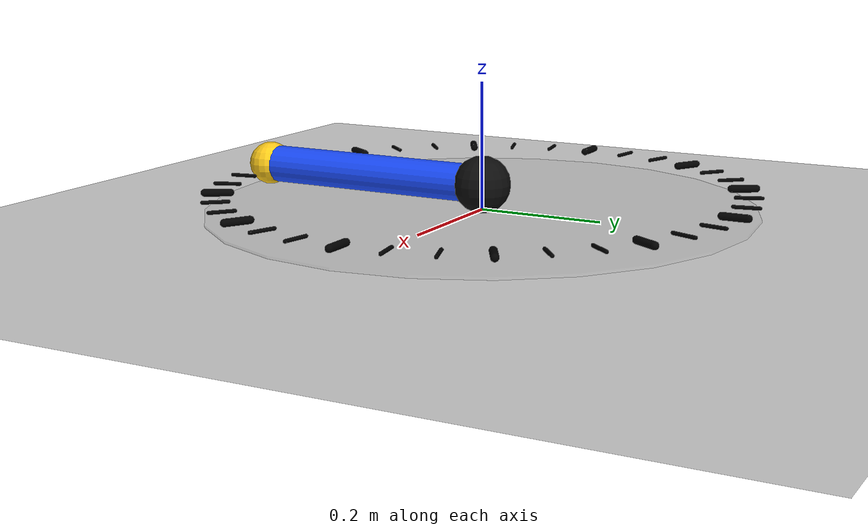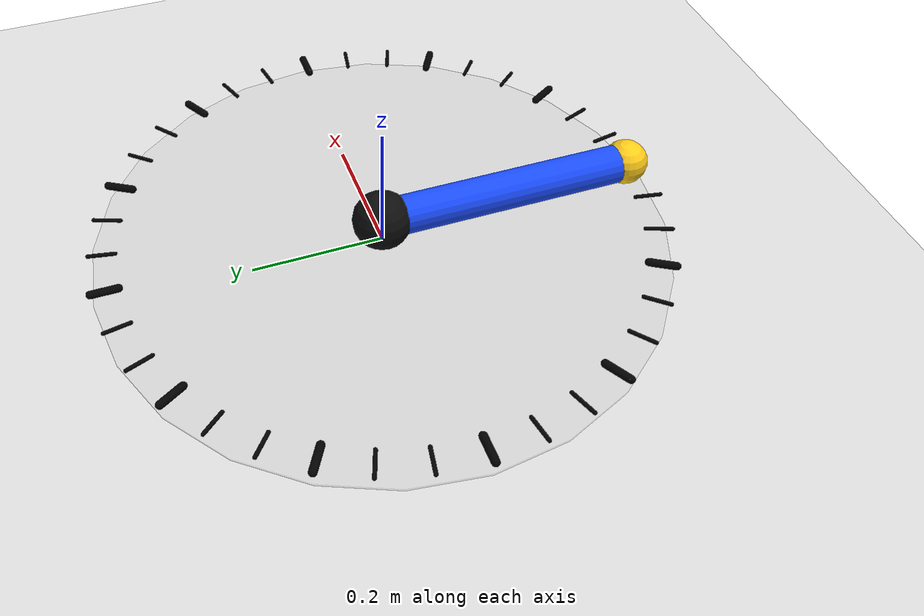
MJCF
<mujoco model="ro60_virtual_leg_1dof">
  <compiler angle="degree"/>

  <option gravity="0 0 0" timestep="0.002"/>

  <visual>
    <headlight diffuse="0.6 0.6 0.6" ambient="0.3 0.3 0.3"/>
  </visual>

  <worldbody>
    <light pos="0 0 2"/>

    <!-- floor -->
    <geom name="floor"
          type="plane"
          pos="0 0 -0.03"
          size="1.0 1.0 0.01"
          rgba="0.85 0.85 0.85 1"/>

    <!-- angle reference circle -->
    <geom name="angle_reference"
          type="cylinder"
          pos="0 0 0.002"
          size="0.43 0.002"
          rgba="0.75 0.75 0.75 0.25"/>

    <!-- downward 0 degree reference line -->
    <geom name="down_reference"
          type="capsule"
          fromto="0 0 0.025 0 -0.43 0.025"
          size="0.008"
          rgba="1 0 0 1"/>

    <!-- protractor tick marks every 10 degrees -->
    <geom name="tick_0" type="capsule" fromto="0.000 -0.390 0.03 0.000 -0.430 0.03" size="0.006" rgba="0 0 0 1"/>
    <geom name="tick_10" type="capsule" fromto="0.068 -0.384 0.03 0.075 -0.423 0.03" size="0.003" rgba="0 0 0 1"/>
    <geom name="tick_20" type="capsule" fromto="0.133 -0.366 0.03 0.147 -0.404 0.03" size="0.003" rgba="0 0 0 1"/>
    <geom name="tick_30" type="capsule" fromto="0.195 -0.338 0.03 0.215 -0.372 0.03" size="0.006" rgba="0 0 0 1"/>
    <geom name="tick_40" type="capsule" fromto="0.251 -0.299 0.03 0.276 -0.329 0.03" size="0.003" rgba="0 0 0 1"/>
    <geom name="tick_50" type="capsule" fromto="0.299 -0.251 0.03 0.329 -0.276 0.03" size="0.003" rgba="0 0 0 1"/>
    <geom name="tick_60" type="capsule" fromto="0.338 -0.195 0.03 0.372 -0.215 0.03" size="0.006" rgba="0 0 0 1"/>
    <geom name="tick_70" type="capsule" fromto="0.366 -0.133 0.03 0.404 -0.147 0.03" size="0.003" rgba="0 0 0 1"/>
    <geom name="tick_80" type="capsule" fromto="0.384 -0.068 0.03 0.423 -0.075 0.03" size="0.003" rgba="0 0 0 1"/>
    <geom name="tick_90" type="capsule" fromto="0.390 0.000 0.03 0.430 0.000 0.03" size="0.006" rgba="0 0 0 1"/>

    <geom name="tick_100" type="capsule" fromto="0.384 0.068 0.03 0.423 0.075 0.03" size="0.003" rgba="0 0 0 1"/>
    <geom name="tick_110" type="capsule" fromto="0.366 0.133 0.03 0.404 0.147 0.03" size="0.003" rgba="0 0 0 1"/>
    <geom name="tick_120" type="capsule" fromto="0.338 0.195 0.03 0.372 0.215 0.03" size="0.006" rgba="0 0 0 1"/>
    <geom name="tick_130" type="capsule" fromto="0.299 0.251 0.03 0.329 0.276 0.03" size="0.003" rgba="0 0 0 1"/>
    <geom name="tick_140" type="capsule" fromto="0.251 0.299 0.03 0.276 0.329 0.03" size="0.003" rgba="0 0 0 1"/>
    <geom name="tick_150" type="capsule" fromto="0.195 0.338 0.03 0.215 0.372 0.03" size="0.006" rgba="0 0 0 1"/>
    <geom name="tick_160" type="capsule" fromto="0.133 0.366 0.03 0.147 0.404 0.03" size="0.003" rgba="0 0 0 1"/>
    <geom name="tick_170" type="capsule" fromto="0.068 0.384 0.03 0.075 0.423 0.03" size="0.003" rgba="0 0 0 1"/>
    <geom name="tick_180" type="capsule" fromto="0.000 0.390 0.03 0.000 0.430 0.03" size="0.006" rgba="0 0 0 1"/>

    <geom name="tick_190" type="capsule" fromto="-0.068 0.384 0.03 -0.075 0.423 0.03" size="0.003" rgba="0 0 0 1"/>
    <geom name="tick_200" type="capsule" fromto="-0.133 0.366 0.03 -0.147 0.404 0.03" size="0.003" rgba="0 0 0 1"/>
    <geom name="tick_210" type="capsule" fromto="-0.195 0.338 0.03 -0.215 0.372 0.03" size="0.006" rgba="0 0 0 1"/>
    <geom name="tick_220" type="capsule" fromto="-0.251 0.299 0.03 -0.276 0.329 0.03" size="0.003" rgba="0 0 0 1"/>
    <geom name="tick_230" type="capsule" fromto="-0.299 0.251 0.03 -0.329 0.276 0.03" size="0.003" rgba="0 0 0 1"/>
    <geom name="tick_240" type="capsule" fromto="-0.338 0.195 0.03 -0.372 0.215 0.03" size="0.006" rgba="0 0 0 1"/>
    <geom name="tick_250" type="capsule" fromto="-0.366 0.133 0.03 -0.404 0.147 0.03" size="0.003" rgba="0 0 0 1"/>
    <geom name="tick_260" type="capsule" fromto="-0.384 0.068 0.03 -0.423 0.075 0.03" size="0.003" rgba="0 0 0 1"/>
    <geom name="tick_270" type="capsule" fromto="-0.390 0.000 0.03 -0.430 0.000 0.03" size="0.006" rgba="0 0 0 1"/>

    <geom name="tick_280" type="capsule" fromto="-0.384 -0.068 0.03 -0.423 -0.075 0.03" size="0.003" rgba="0 0 0 1"/>
    <geom name="tick_290" type="capsule" fromto="-0.366 -0.133 0.03 -0.404 -0.147 0.03" size="0.003" rgba="0 0 0 1"/>
    <geom name="tick_300" type="capsule" fromto="-0.338 -0.195 0.03 -0.372 -0.215 0.03" size="0.006" rgba="0 0 0 1"/>
    <geom name="tick_310" type="capsule" fromto="-0.299 -0.251 0.03 -0.329 -0.276 0.03" size="0.003" rgba="0 0 0 1"/>
    <geom name="tick_320" type="capsule" fromto="-0.251 -0.299 0.03 -0.276 -0.329 0.03" size="0.003" rgba="0 0 0 1"/>
    <geom name="tick_330" type="capsule" fromto="-0.195 -0.338 0.03 -0.215 -0.372 0.03" size="0.006" rgba="0 0 0 1"/>
    <geom name="tick_340" type="capsule" fromto="-0.133 -0.366 0.03 -0.147 -0.404 0.03" size="0.003" rgba="0 0 0 1"/>
    <geom name="tick_350" type="capsule" fromto="-0.068 -0.384 0.03 -0.075 -0.423 0.03" size="0.003" rgba="0 0 0 1"/>

    <!-- base / actuator position -->
    <body name="hip_base" pos="0 0 0.04">
      <geom name="hip_marker"
            type="sphere"
            pos="0 0 0"
            size="0.045"
            rgba="0.05 0.05 0.05 1"/>

      <joint name="hip_joint"
             type="hinge"
             axis="0 0 1"
             limited="true"
             range="-180 180"
             damping="0.5"/>

      <!-- 0 degree = downward -->
      <geom name="leg_link"
            type="capsule"
            fromto="0 0 0 0 -0.4 0"
            size="0.03"
            rgba="0.1 0.3 1 1"/>

      <site name="leg_end"
            pos="0 -0.4 0"
            size="0.03"
            rgba="1 0.8 0.1 1"/>

      <geom name="foot_marker"
            type="sphere"
            pos="0 -0.4 0"
            size="0.035"
            rgba="1 0.8 0.1 1"/>
    </body>
  </worldbody>
</mujoco>
